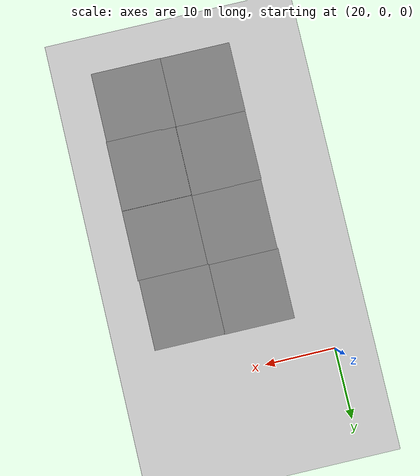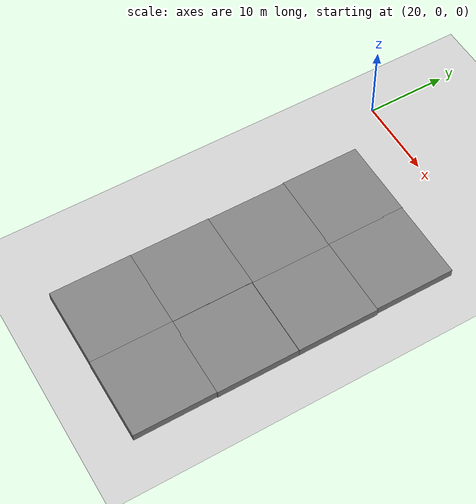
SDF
<sdf version="1.7">
 <world name="default">
  <model name="ground_plane">
   <static>1</static>
   <link name="link">
    <collision name="collision">
     <geometry><plane><normal>0 0 1</normal><size>100 100</size></plane></geometry>
     <surface>
      <contact><collide_bitmask>65535</collide_bitmask></contact>
      <friction><ode><mu>100</mu><mu2>50</mu2></ode></friction>
     </surface>
    </collision>
    <visual name="visual">
     <cast_shadows>0</cast_shadows>
     <geometry><plane><normal>0 0 1</normal><size>100 100</size></plane></geometry>
     <material>
      <script><uri>file://media/materials/scripts/gazebo.material</uri><name>Gazebo/Grey</name></script>
     </material>
    </visual>
   </link>
  </model>
  <model name="farm_clone_0_clone_1_clone_1_clone_32">
   <link name="link">
    <inertial>
     <mass>1</mass>
     <inertia><ixx>1</ixx><ixy>0</ixy><ixz>0</ixz><iyy>1</iyy><iyz>0</iyz><izz>1</izz></inertia>
    </inertial>
    <visual name="visual_1">
     <pose>2 2.5 0 0 -0 0</pose>
     <cast_shadows>0</cast_shadows>
     <geometry><box><size>10 10 2</size></box></geometry>
     <material>
      <script>
       <uri>model://mud_box/materials/scripts</uri>
       <uri>model://mud_box/materials/textures</uri>
       <name>vrc/mud</name>
      </script>
      <shader type="pixel"><normal_map>__default__</normal_map></shader>
      <ambient>0.5 0.5 0.5 1</ambient>
      <diffuse>0.5 0.5 0.5 1</diffuse>
      <specular>0.2 0.2 0.2 1</specular>
      <emissive>0 0 0 1</emissive>
     </material>
    </visual>
    <visual name="visual_2">
     <pose>2 2.5 0 0 -0 0</pose>
     <cast_shadows>0</cast_shadows>
     <geometry><box><size>10 10 2</size></box></geometry>
     <material>
      <script>
       <uri>model://mud_box/materials/scripts</uri>
       <uri>model://mud_box/materials/textures</uri>
       <name>vrc/mud</name>
      </script>
      <shader type="pixel"><normal_map>__default__</normal_map></shader>
      <ambient>0.5 0.5 0.5 1</ambient>
      <diffuse>0.5 0.5 0.5 1</diffuse>
      <specular>0.2 0.2 0.2 1</specular>
      <emissive>0 0 0 1</emissive>
     </material>
    </visual>
    <visual name="visual_4">
     <pose>2 2.5 0 0 -0 0</pose>
     <cast_shadows>0</cast_shadows>
     <geometry><box><size>10 10 2</size></box></geometry>
     <material>
      <script>
       <uri>model://mud_box/materials/scripts</uri>
       <uri>model://mud_box/materials/textures</uri>
       <name>vrc/mud</name>
      </script>
      <shader type="pixel"><normal_map>__default__</normal_map></shader>
      <ambient>0.5 0.5 0.5 1</ambient>
      <diffuse>0.5 0.5 0.5 1</diffuse>
      <specular>0.2 0.2 0.2 1</specular>
      <emissive>0 0 0 1</emissive>
     </material>
    </visual>
    <visual name="visual_3">
     <pose>2 2.5 0 0 -0 0</pose>
     <cast_shadows>0</cast_shadows>
     <geometry><box><size>10 10 2</size></box></geometry>
     <material>
      <script>
       <uri>model://mud_box/materials/scripts</uri>
       <uri>model://mud_box/materials/textures</uri>
       <name>vrc/mud</name>
      </script>
      <shader type="pixel"><normal_map>__default__</normal_map></shader>
      <ambient>0.5 0.5 0.5 1</ambient>
      <diffuse>0.5 0.5 0.5 1</diffuse>
      <specular>0.2 0.2 0.2 1</specular>
      <emissive>0 0 0 1</emissive>
     </material>
    </visual>
    <collision name="collision">
     <laser_retro>0.3</laser_retro>
     <pose>2 2.5 0 0 -0 0</pose>
     <geometry><box><size>100 100 2</size></box></geometry>
     <surface>
      <friction>
       <ode><mu>1.2</mu><mu2>1.2</mu2><fdir1>0 0 0</fdir1><slip1>0.01</slip1><slip2>0.01</slip2></ode>
       <torsional>
        <coefficient>0.05</coefficient>
        <patch_radius>0.08</patch_radius>
        <surface_radius>0.05</surface_radius>
        <use_patch_radius>1</use_patch_radius>
        <ode><slip>0</slip></ode>
       </torsional>
      </friction>
      <bounce><restitution_coefficient>0</restitution_coefficient><threshold>1</threshold></bounce>
      <contact>
       <collide_without_contact>0</collide_without_contact>
       <collide_without_contact_bitmask>1</collide_without_contact_bitmask>
       <collide_bitmask>1</collide_bitmask>
       <ode>
        <soft_cfm>0</soft_cfm>
        <soft_erp>1</soft_erp>
        <kp>1e+07</kp>
        <kd>5000</kd>
        <max_vel>0.001</max_vel>
        <min_depth>0.0005</min_depth>
       </ode>
       <bullet>
        <split_impulse>1</split_impulse>
        <split_impulse_penetration_threshold>-0.01</split_impulse_penetration_threshold>
        <soft_cfm>0</soft_cfm>
        <soft_erp>1</soft_erp>
        <kp>1e+07</kp>
        <kd>5000</kd>
       </bullet>
      </contact>
     </surface>
    </collision>
   </link>
   <static>1</static>
   <pose>27.5942 -42.8336 0 0 -0 0</pose>
  </model>
  <model name="farm_clone_0_clone_1_clone_1_clone_33">
   <link name="link">
    <inertial>
     <mass>1</mass>
     <inertia><ixx>1</ixx><ixy>0</ixy><ixz>0</ixz><iyy>1</iyy><iyz>0</iyz><izz>1</izz></inertia>
    </inertial>
    <visual name="visual_1">
     <pose>2 2.5 0 0 -0 0</pose>
     <cast_shadows>0</cast_shadows>
     <geometry><box><size>10 10 2</size></box></geometry>
     <material>
      <script>
       <uri>model://mud_box/materials/scripts</uri>
       <uri>model://mud_box/materials/textures</uri>
       <name>vrc/mud</name>
      </script>
      <shader type="pixel"><normal_map>__default__</normal_map></shader>
      <ambient>0.5 0.5 0.5 1</ambient>
      <diffuse>0.5 0.5 0.5 1</diffuse>
      <specular>0.2 0.2 0.2 1</specular>
      <emissive>0 0 0 1</emissive>
     </material>
    </visual>
    <visual name="visual_2">
     <pose>2 2.5 0 0 -0 0</pose>
     <cast_shadows>0</cast_shadows>
     <geometry><box><size>10 10 2</size></box></geometry>
     <material>
      <script>
       <uri>model://mud_box/materials/scripts</uri>
       <uri>model://mud_box/materials/textures</uri>
       <name>vrc/mud</name>
      </script>
      <shader type="pixel"><normal_map>__default__</normal_map></shader>
      <ambient>0.5 0.5 0.5 1</ambient>
      <diffuse>0.5 0.5 0.5 1</diffuse>
      <specular>0.2 0.2 0.2 1</specular>
      <emissive>0 0 0 1</emissive>
     </material>
    </visual>
    <visual name="visual_4">
     <pose>2 2.5 0 0 -0 0</pose>
     <cast_shadows>0</cast_shadows>
     <geometry><box><size>10 10 2</size></box></geometry>
     <material>
      <script>
       <uri>model://mud_box/materials/scripts</uri>
       <uri>model://mud_box/materials/textures</uri>
       <name>vrc/mud</name>
      </script>
      <shader type="pixel"><normal_map>__default__</normal_map></shader>
      <ambient>0.5 0.5 0.5 1</ambient>
      <diffuse>0.5 0.5 0.5 1</diffuse>
      <specular>0.2 0.2 0.2 1</specular>
      <emissive>0 0 0 1</emissive>
     </material>
    </visual>
    <visual name="visual_3">
     <pose>2 2.5 0 0 -0 0</pose>
     <cast_shadows>0</cast_shadows>
     <geometry><box><size>10 10 2</size></box></geometry>
     <material>
      <script>
       <uri>model://mud_box/materials/scripts</uri>
       <uri>model://mud_box/materials/textures</uri>
       <name>vrc/mud</name>
      </script>
      <shader type="pixel"><normal_map>__default__</normal_map></shader>
      <ambient>0.5 0.5 0.5 1</ambient>
      <diffuse>0.5 0.5 0.5 1</diffuse>
      <specular>0.2 0.2 0.2 1</specular>
      <emissive>0 0 0 1</emissive>
     </material>
    </visual>
    <collision name="collision">
     <laser_retro>0.3</laser_retro>
     <pose>2 2.5 0 0 -0 0</pose>
     <geometry><box><size>100 100 2</size></box></geometry>
     <surface>
      <friction>
       <ode><mu>1.2</mu><mu2>1.2</mu2><fdir1>0 0 0</fdir1><slip1>0.01</slip1><slip2>0.01</slip2></ode>
       <torsional>
        <coefficient>0.05</coefficient>
        <patch_radius>0.08</patch_radius>
        <surface_radius>0.05</surface_radius>
        <use_patch_radius>1</use_patch_radius>
        <ode><slip>0</slip></ode>
       </torsional>
      </friction>
      <bounce><restitution_coefficient>0</restitution_coefficient><threshold>1</threshold></bounce>
      <contact>
       <collide_without_contact>0</collide_without_contact>
       <collide_without_contact_bitmask>1</collide_without_contact_bitmask>
       <collide_bitmask>1</collide_bitmask>
       <ode>
        <soft_cfm>0</soft_cfm>
        <soft_erp>1</soft_erp>
        <kp>1e+07</kp>
        <kd>5000</kd>
        <max_vel>0.001</max_vel>
        <min_depth>0.0005</min_depth>
       </ode>
       <bullet>
        <split_impulse>1</split_impulse>
        <split_impulse_penetration_threshold>-0.01</split_impulse_penetration_threshold>
        <soft_cfm>0</soft_cfm>
        <soft_erp>1</soft_erp>
        <kp>1e+07</kp>
        <kd>5000</kd>
       </bullet>
      </contact>
     </surface>
    </collision>
   </link>
   <static>1</static>
   <pose>37.5904 -42.8676 0 0 -0 0</pose>
  </model>
  <model name="farm_clone_0_clone_1_clone_1_clone_34">
   <link name="link">
    <inertial>
     <mass>1</mass>
     <inertia><ixx>1</ixx><ixy>0</ixy><ixz>0</ixz><iyy>1</iyy><iyz>0</iyz><izz>1</izz></inertia>
    </inertial>
    <visual name="visual_1">
     <pose>2 2.5 0 0 -0 0</pose>
     <cast_shadows>0</cast_shadows>
     <geometry><box><size>10 10 2</size></box></geometry>
     <material>
      <script>
       <uri>model://mud_box/materials/scripts</uri>
       <uri>model://mud_box/materials/textures</uri>
       <name>vrc/mud</name>
      </script>
      <shader type="pixel"><normal_map>__default__</normal_map></shader>
      <ambient>0.5 0.5 0.5 1</ambient>
      <diffuse>0.5 0.5 0.5 1</diffuse>
      <specular>0.2 0.2 0.2 1</specular>
      <emissive>0 0 0 1</emissive>
     </material>
    </visual>
    <visual name="visual_2">
     <pose>2 2.5 0 0 -0 0</pose>
     <cast_shadows>0</cast_shadows>
     <geometry><box><size>10 10 2</size></box></geometry>
     <material>
      <script>
       <uri>model://mud_box/materials/scripts</uri>
       <uri>model://mud_box/materials/textures</uri>
       <name>vrc/mud</name>
      </script>
      <shader type="pixel"><normal_map>__default__</normal_map></shader>
      <ambient>0.5 0.5 0.5 1</ambient>
      <diffuse>0.5 0.5 0.5 1</diffuse>
      <specular>0.2 0.2 0.2 1</specular>
      <emissive>0 0 0 1</emissive>
     </material>
    </visual>
    <visual name="visual_4">
     <pose>2 2.5 0 0 -0 0</pose>
     <cast_shadows>0</cast_shadows>
     <geometry><box><size>10 10 2</size></box></geometry>
     <material>
      <script>
       <uri>model://mud_box/materials/scripts</uri>
       <uri>model://mud_box/materials/textures</uri>
       <name>vrc/mud</name>
      </script>
      <shader type="pixel"><normal_map>__default__</normal_map></shader>
      <ambient>0.5 0.5 0.5 1</ambient>
      <diffuse>0.5 0.5 0.5 1</diffuse>
      <specular>0.2 0.2 0.2 1</specular>
      <emissive>0 0 0 1</emissive>
     </material>
    </visual>
    <visual name="visual_3">
     <pose>2 2.5 0 0 -0 0</pose>
     <cast_shadows>0</cast_shadows>
     <geometry><box><size>10 10 2</size></box></geometry>
     <material>
      <script>
       <uri>model://mud_box/materials/scripts</uri>
       <uri>model://mud_box/materials/textures</uri>
       <name>vrc/mud</name>
      </script>
      <shader type="pixel"><normal_map>__default__</normal_map></shader>
      <ambient>0.5 0.5 0.5 1</ambient>
      <diffuse>0.5 0.5 0.5 1</diffuse>
      <specular>0.2 0.2 0.2 1</specular>
      <emissive>0 0 0 1</emissive>
     </material>
    </visual>
    <collision name="collision">
     <laser_retro>0.3</laser_retro>
     <pose>2 2.5 0 0 -0 0</pose>
     <geometry><box><size>100 100 2</size></box></geometry>
     <surface>
      <friction>
       <ode><mu>1.2</mu><mu2>1.2</mu2><fdir1>0 0 0</fdir1><slip1>0.01</slip1><slip2>0.01</slip2></ode>
       <torsional>
        <coefficient>0.05</coefficient>
        <patch_radius>0.08</patch_radius>
        <surface_radius>0.05</surface_radius>
        <use_patch_radius>1</use_patch_radius>
        <ode><slip>0</slip></ode>
       </torsional>
      </friction>
      <bounce><restitution_coefficient>0</restitution_coefficient><threshold>1</threshold></bounce>
      <contact>
       <collide_without_contact>0</collide_without_contact>
       <collide_without_contact_bitmask>1</collide_without_contact_bitmask>
       <collide_bitmask>1</collide_bitmask>
       <ode>
        <soft_cfm>0</soft_cfm>
        <soft_erp>1</soft_erp>
        <kp>1e+07</kp>
        <kd>5000</kd>
        <max_vel>0.001</max_vel>
        <min_depth>0.0005</min_depth>
       </ode>
       <bullet>
        <split_impulse>1</split_impulse>
        <split_impulse_penetration_threshold>-0.01</split_impulse_penetration_threshold>
        <soft_cfm>0</soft_cfm>
        <soft_erp>1</soft_erp>
        <kp>1e+07</kp>
        <kd>5000</kd>
       </bullet>
      </contact>
     </surface>
    </collision>
   </link>
   <static>1</static>
   <pose>27.6282 -32.8714 0 0 -0 0</pose>
  </model>
  <model name="farm_clone_0_clone_1_clone_1_clone_35">
   <link name="link">
    <inertial>
     <mass>1</mass>
     <inertia><ixx>1</ixx><ixy>0</ixy><ixz>0</ixz><iyy>1</iyy><iyz>0</iyz><izz>1</izz></inertia>
    </inertial>
    <visual name="visual_1">
     <pose>2 2.5 0 0 -0 0</pose>
     <cast_shadows>0</cast_shadows>
     <geometry><box><size>10 10 2</size></box></geometry>
     <material>
      <script>
       <uri>model://mud_box/materials/scripts</uri>
       <uri>model://mud_box/materials/textures</uri>
       <name>vrc/mud</name>
      </script>
      <shader type="pixel"><normal_map>__default__</normal_map></shader>
      <ambient>0.5 0.5 0.5 1</ambient>
      <diffuse>0.5 0.5 0.5 1</diffuse>
      <specular>0.2 0.2 0.2 1</specular>
      <emissive>0 0 0 1</emissive>
     </material>
    </visual>
    <visual name="visual_2">
     <pose>2 2.5 0 0 -0 0</pose>
     <cast_shadows>0</cast_shadows>
     <geometry><box><size>10 10 2</size></box></geometry>
     <material>
      <script>
       <uri>model://mud_box/materials/scripts</uri>
       <uri>model://mud_box/materials/textures</uri>
       <name>vrc/mud</name>
      </script>
      <shader type="pixel"><normal_map>__default__</normal_map></shader>
      <ambient>0.5 0.5 0.5 1</ambient>
      <diffuse>0.5 0.5 0.5 1</diffuse>
      <specular>0.2 0.2 0.2 1</specular>
      <emissive>0 0 0 1</emissive>
     </material>
    </visual>
    <visual name="visual_4">
     <pose>2 2.5 0 0 -0 0</pose>
     <cast_shadows>0</cast_shadows>
     <geometry><box><size>10 10 2</size></box></geometry>
     <material>
      <script>
       <uri>model://mud_box/materials/scripts</uri>
       <uri>model://mud_box/materials/textures</uri>
       <name>vrc/mud</name>
      </script>
      <shader type="pixel"><normal_map>__default__</normal_map></shader>
      <ambient>0.5 0.5 0.5 1</ambient>
      <diffuse>0.5 0.5 0.5 1</diffuse>
      <specular>0.2 0.2 0.2 1</specular>
      <emissive>0 0 0 1</emissive>
     </material>
    </visual>
    <visual name="visual_3">
     <pose>2 2.5 0 0 -0 0</pose>
     <cast_shadows>0</cast_shadows>
     <geometry><box><size>10 10 2</size></box></geometry>
     <material>
      <script>
       <uri>model://mud_box/materials/scripts</uri>
       <uri>model://mud_box/materials/textures</uri>
       <name>vrc/mud</name>
      </script>
      <shader type="pixel"><normal_map>__default__</normal_map></shader>
      <ambient>0.5 0.5 0.5 1</ambient>
      <diffuse>0.5 0.5 0.5 1</diffuse>
      <specular>0.2 0.2 0.2 1</specular>
      <emissive>0 0 0 1</emissive>
     </material>
    </visual>
    <collision name="collision">
     <laser_retro>0.3</laser_retro>
     <pose>2 2.5 0 0 -0 0</pose>
     <geometry><box><size>100 100 2</size></box></geometry>
     <surface>
      <friction>
       <ode><mu>1.2</mu><mu2>1.2</mu2><fdir1>0 0 0</fdir1><slip1>0.01</slip1><slip2>0.01</slip2></ode>
       <torsional>
        <coefficient>0.05</coefficient>
        <patch_radius>0.08</patch_radius>
        <surface_radius>0.05</surface_radius>
        <use_patch_radius>1</use_patch_radius>
        <ode><slip>0</slip></ode>
       </torsional>
      </friction>
      <bounce><restitution_coefficient>0</restitution_coefficient><threshold>1</threshold></bounce>
      <contact>
       <collide_without_contact>0</collide_without_contact>
       <collide_without_contact_bitmask>1</collide_without_contact_bitmask>
       <collide_bitmask>1</collide_bitmask>
       <ode>
        <soft_cfm>0</soft_cfm>
        <soft_erp>1</soft_erp>
        <kp>1e+07</kp>
        <kd>5000</kd>
        <max_vel>0.001</max_vel>
        <min_depth>0.0005</min_depth>
       </ode>
       <bullet>
        <split_impulse>1</split_impulse>
        <split_impulse_penetration_threshold>-0.01</split_impulse_penetration_threshold>
        <soft_cfm>0</soft_cfm>
        <soft_erp>1</soft_erp>
        <kp>1e+07</kp>
        <kd>5000</kd>
       </bullet>
      </contact>
     </surface>
    </collision>
   </link>
   <static>1</static>
   <pose>37.6584 -32.9734 0 0 -0 0</pose>
  </model>
  <model name="farm_clone_0_clone_1_clone_1_clone_36">
   <link name="link">
    <inertial>
     <mass>1</mass>
     <inertia><ixx>1</ixx><ixy>0</ixy><ixz>0</ixz><iyy>1</iyy><iyz>0</iyz><izz>1</izz></inertia>
    </inertial>
    <visual name="visual_1">
     <pose>2 2.5 0 0 -0 0</pose>
     <cast_shadows>0</cast_shadows>
     <geometry><box><size>10 10 2</size></box></geometry>
     <material>
      <script>
       <uri>model://mud_box/materials/scripts</uri>
       <uri>model://mud_box/materials/textures</uri>
       <name>vrc/mud</name>
      </script>
      <shader type="pixel"><normal_map>__default__</normal_map></shader>
      <ambient>0.5 0.5 0.5 1</ambient>
      <diffuse>0.5 0.5 0.5 1</diffuse>
      <specular>0.2 0.2 0.2 1</specular>
      <emissive>0 0 0 1</emissive>
     </material>
    </visual>
    <visual name="visual_2">
     <pose>2 2.5 0 0 -0 0</pose>
     <cast_shadows>0</cast_shadows>
     <geometry><box><size>10 10 2</size></box></geometry>
     <material>
      <script>
       <uri>model://mud_box/materials/scripts</uri>
       <uri>model://mud_box/materials/textures</uri>
       <name>vrc/mud</name>
      </script>
      <shader type="pixel"><normal_map>__default__</normal_map></shader>
      <ambient>0.5 0.5 0.5 1</ambient>
      <diffuse>0.5 0.5 0.5 1</diffuse>
      <specular>0.2 0.2 0.2 1</specular>
      <emissive>0 0 0 1</emissive>
     </material>
    </visual>
    <visual name="visual_4">
     <pose>2 2.5 0 0 -0 0</pose>
     <cast_shadows>0</cast_shadows>
     <geometry><box><size>10 10 2</size></box></geometry>
     <material>
      <script>
       <uri>model://mud_box/materials/scripts</uri>
       <uri>model://mud_box/materials/textures</uri>
       <name>vrc/mud</name>
      </script>
      <shader type="pixel"><normal_map>__default__</normal_map></shader>
      <ambient>0.5 0.5 0.5 1</ambient>
      <diffuse>0.5 0.5 0.5 1</diffuse>
      <specular>0.2 0.2 0.2 1</specular>
      <emissive>0 0 0 1</emissive>
     </material>
    </visual>
    <visual name="visual_3">
     <pose>2 2.5 0 0 -0 0</pose>
     <cast_shadows>0</cast_shadows>
     <geometry><box><size>10 10 2</size></box></geometry>
     <material>
      <script>
       <uri>model://mud_box/materials/scripts</uri>
       <uri>model://mud_box/materials/textures</uri>
       <name>vrc/mud</name>
      </script>
      <shader type="pixel"><normal_map>__default__</normal_map></shader>
      <ambient>0.5 0.5 0.5 1</ambient>
      <diffuse>0.5 0.5 0.5 1</diffuse>
      <specular>0.2 0.2 0.2 1</specular>
      <emissive>0 0 0 1</emissive>
     </material>
    </visual>
    <collision name="collision">
     <laser_retro>0.3</laser_retro>
     <pose>2 2.5 0 0 -0 0</pose>
     <geometry><box><size>100 100 2</size></box></geometry>
     <surface>
      <friction>
       <ode><mu>1.2</mu><mu2>1.2</mu2><fdir1>0 0 0</fdir1><slip1>0.01</slip1><slip2>0.01</slip2></ode>
       <torsional>
        <coefficient>0.05</coefficient>
        <patch_radius>0.08</patch_radius>
        <surface_radius>0.05</surface_radius>
        <use_patch_radius>1</use_patch_radius>
        <ode><slip>0</slip></ode>
       </torsional>
      </friction>
      <bounce><restitution_coefficient>0</restitution_coefficient><threshold>1</threshold></bounce>
      <contact>
       <collide_without_contact>0</collide_without_contact>
       <collide_without_contact_bitmask>1</collide_without_contact_bitmask>
       <collide_bitmask>1</collide_bitmask>
       <ode>
        <soft_cfm>0</soft_cfm>
        <soft_erp>1</soft_erp>
        <kp>1e+07</kp>
        <kd>5000</kd>
        <max_vel>0.001</max_vel>
        <min_depth>0.0005</min_depth>
       </ode>
       <bullet>
        <split_impulse>1</split_impulse>
        <split_impulse_penetration_threshold>-0.01</split_impulse_penetration_threshold>
        <soft_cfm>0</soft_cfm>
        <soft_erp>1</soft_erp>
        <kp>1e+07</kp>
        <kd>5000</kd>
       </bullet>
      </contact>
     </surface>
    </collision>
   </link>
   <static>1</static>
   <pose>27.6962 -22.9093 0 0 -0 0</pose>
  </model>
  <model name="farm_clone_0_clone_1_clone_1_clone_37">
   <link name="link">
    <inertial>
     <mass>1</mass>
     <inertia><ixx>1</ixx><ixy>0</ixy><ixz>0</ixz><iyy>1</iyy><iyz>0</iyz><izz>1</izz></inertia>
    </inertial>
    <visual name="visual_1">
     <pose>2 2.5 0 0 -0 0</pose>
     <cast_shadows>0</cast_shadows>
     <geometry><box><size>10 10 2</size></box></geometry>
     <material>
      <script>
       <uri>model://mud_box/materials/scripts</uri>
       <uri>model://mud_box/materials/textures</uri>
       <name>vrc/mud</name>
      </script>
      <shader type="pixel"><normal_map>__default__</normal_map></shader>
      <ambient>0.5 0.5 0.5 1</ambient>
      <diffuse>0.5 0.5 0.5 1</diffuse>
      <specular>0.2 0.2 0.2 1</specular>
      <emissive>0 0 0 1</emissive>
     </material>
    </visual>
    <visual name="visual_2">
     <pose>2 2.5 0 0 -0 0</pose>
     <cast_shadows>0</cast_shadows>
     <geometry><box><size>10 10 2</size></box></geometry>
     <material>
      <script>
       <uri>model://mud_box/materials/scripts</uri>
       <uri>model://mud_box/materials/textures</uri>
       <name>vrc/mud</name>
      </script>
      <shader type="pixel"><normal_map>__default__</normal_map></shader>
      <ambient>0.5 0.5 0.5 1</ambient>
      <diffuse>0.5 0.5 0.5 1</diffuse>
      <specular>0.2 0.2 0.2 1</specular>
      <emissive>0 0 0 1</emissive>
     </material>
    </visual>
    <visual name="visual_4">
     <pose>2 2.5 0 0 -0 0</pose>
     <cast_shadows>0</cast_shadows>
     <geometry><box><size>10 10 2</size></box></geometry>
     <material>
      <script>
       <uri>model://mud_box/materials/scripts</uri>
       <uri>model://mud_box/materials/textures</uri>
       <name>vrc/mud</name>
      </script>
      <shader type="pixel"><normal_map>__default__</normal_map></shader>
      <ambient>0.5 0.5 0.5 1</ambient>
      <diffuse>0.5 0.5 0.5 1</diffuse>
      <specular>0.2 0.2 0.2 1</specular>
      <emissive>0 0 0 1</emissive>
     </material>
    </visual>
    <visual name="visual_3">
     <pose>2 2.5 0 0 -0 0</pose>
     <cast_shadows>0</cast_shadows>
     <geometry><box><size>10 10 2</size></box></geometry>
     <material>
      <script>
       <uri>model://mud_box/materials/scripts</uri>
       <uri>model://mud_box/materials/textures</uri>
       <name>vrc/mud</name>
      </script>
      <shader type="pixel"><normal_map>__default__</normal_map></shader>
      <ambient>0.5 0.5 0.5 1</ambient>
      <diffuse>0.5 0.5 0.5 1</diffuse>
      <specular>0.2 0.2 0.2 1</specular>
      <emissive>0 0 0 1</emissive>
     </material>
    </visual>
    <collision name="collision">
     <laser_retro>0.3</laser_retro>
     <pose>2 2.5 0 0 -0 0</pose>
     <geometry><box><size>100 100 2</size></box></geometry>
     <surface>
      <friction>
       <ode><mu>1.2</mu><mu2>1.2</mu2><fdir1>0 0 0</fdir1><slip1>0.01</slip1><slip2>0.01</slip2></ode>
       <torsional>
        <coefficient>0.05</coefficient>
        <patch_radius>0.08</patch_radius>
        <surface_radius>0.05</surface_radius>
        <use_patch_radius>1</use_patch_radius>
        <ode><slip>0</slip></ode>
       </torsional>
      </friction>
      <bounce><restitution_coefficient>0</restitution_coefficient><threshold>1</threshold></bounce>
      <contact>
       <collide_without_contact>0</collide_without_contact>
       <collide_without_contact_bitmask>1</collide_without_contact_bitmask>
       <collide_bitmask>1</collide_bitmask>
       <ode>
        <soft_cfm>0</soft_cfm>
        <soft_erp>1</soft_erp>
        <kp>1e+07</kp>
        <kd>5000</kd>
        <max_vel>0.001</max_vel>
        <min_depth>0.0005</min_depth>
       </ode>
       <bullet>
        <split_impulse>1</split_impulse>
        <split_impulse_penetration_threshold>-0.01</split_impulse_penetration_threshold>
        <soft_cfm>0</soft_cfm>
        <soft_erp>1</soft_erp>
        <kp>1e+07</kp>
        <kd>5000</kd>
       </bullet>
      </contact>
     </surface>
    </collision>
   </link>
   <static>1</static>
   <pose>37.6584 -22.9433 0 0 -0 0</pose>
  </model>
  <model name="farm_clone_0_clone_1_clone_1_clone_38">
   <link name="link">
    <inertial>
     <mass>1</mass>
     <inertia><ixx>1</ixx><ixy>0</ixy><ixz>0</ixz><iyy>1</iyy><iyz>0</iyz><izz>1</izz></inertia>
    </inertial>
    <visual name="visual_1">
     <pose>2 2.5 0 0 -0 0</pose>
     <cast_shadows>0</cast_shadows>
     <geometry><box><size>10 10 2</size></box></geometry>
     <material>
      <script>
       <uri>model://mud_box/materials/scripts</uri>
       <uri>model://mud_box/materials/textures</uri>
       <name>vrc/mud</name>
      </script>
      <shader type="pixel"><normal_map>__default__</normal_map></shader>
      <ambient>0.5 0.5 0.5 1</ambient>
      <diffuse>0.5 0.5 0.5 1</diffuse>
      <specular>0.2 0.2 0.2 1</specular>
      <emissive>0 0 0 1</emissive>
     </material>
    </visual>
    <visual name="visual_2">
     <pose>2 2.5 0 0 -0 0</pose>
     <cast_shadows>0</cast_shadows>
     <geometry><box><size>10 10 2</size></box></geometry>
     <material>
      <script>
       <uri>model://mud_box/materials/scripts</uri>
       <uri>model://mud_box/materials/textures</uri>
       <name>vrc/mud</name>
      </script>
      <shader type="pixel"><normal_map>__default__</normal_map></shader>
      <ambient>0.5 0.5 0.5 1</ambient>
      <diffuse>0.5 0.5 0.5 1</diffuse>
      <specular>0.2 0.2 0.2 1</specular>
      <emissive>0 0 0 1</emissive>
     </material>
    </visual>
    <visual name="visual_4">
     <pose>2 2.5 0 0 -0 0</pose>
     <cast_shadows>0</cast_shadows>
     <geometry><box><size>10 10 2</size></box></geometry>
     <material>
      <script>
       <uri>model://mud_box/materials/scripts</uri>
       <uri>model://mud_box/materials/textures</uri>
       <name>vrc/mud</name>
      </script>
      <shader type="pixel"><normal_map>__default__</normal_map></shader>
      <ambient>0.5 0.5 0.5 1</ambient>
      <diffuse>0.5 0.5 0.5 1</diffuse>
      <specular>0.2 0.2 0.2 1</specular>
      <emissive>0 0 0 1</emissive>
     </material>
    </visual>
    <visual name="visual_3">
     <pose>2 2.5 0 0 -0 0</pose>
     <cast_shadows>0</cast_shadows>
     <geometry><box><size>10 10 2</size></box></geometry>
     <material>
      <script>
       <uri>model://mud_box/materials/scripts</uri>
       <uri>model://mud_box/materials/textures</uri>
       <name>vrc/mud</name>
      </script>
      <shader type="pixel"><normal_map>__default__</normal_map></shader>
      <ambient>0.5 0.5 0.5 1</ambient>
      <diffuse>0.5 0.5 0.5 1</diffuse>
      <specular>0.2 0.2 0.2 1</specular>
      <emissive>0 0 0 1</emissive>
     </material>
    </visual>
    <collision name="collision">
     <laser_retro>0.3</laser_retro>
     <pose>2 2.5 0 0 -0 0</pose>
     <geometry><box><size>100 100 2</size></box></geometry>
     <surface>
      <friction>
       <ode><mu>1.2</mu><mu2>1.2</mu2><fdir1>0 0 0</fdir1><slip1>0.01</slip1><slip2>0.01</slip2></ode>
       <torsional>
        <coefficient>0.05</coefficient>
        <patch_radius>0.08</patch_radius>
        <surface_radius>0.05</surface_radius>
        <use_patch_radius>1</use_patch_radius>
        <ode><slip>0</slip></ode>
       </torsional>
      </friction>
      <bounce><restitution_coefficient>0</restitution_coefficient><threshold>1</threshold></bounce>
      <contact>
       <collide_without_contact>0</collide_without_contact>
       <collide_without_contact_bitmask>1</collide_without_contact_bitmask>
       <collide_bitmask>1</collide_bitmask>
       <ode>
        <soft_cfm>0</soft_cfm>
        <soft_erp>1</soft_erp>
        <kp>1e+07</kp>
        <kd>5000</kd>
        <max_vel>0.001</max_vel>
        <min_depth>0.0005</min_depth>
       </ode>
       <bullet>
        <split_impulse>1</split_impulse>
        <split_impulse_penetration_threshold>-0.01</split_impulse_penetration_threshold>
        <soft_cfm>0</soft_cfm>
        <soft_erp>1</soft_erp>
        <kp>1e+07</kp>
        <kd>5000</kd>
       </bullet>
      </contact>
     </surface>
    </collision>
   </link>
   <static>1</static>
   <pose>27.5942 -12.9812 0 0 -0 0</pose>
  </model>
  <model name="farm_clone_0_clone_1_clone_1_clone_39">
   <link name="link">
    <inertial>
     <mass>1</mass>
     <inertia><ixx>1</ixx><ixy>0</ixy><ixz>0</ixz><iyy>1</iyy><iyz>0</iyz><izz>1</izz></inertia>
    </inertial>
    <visual name="visual_1">
     <pose>2 2.5 0 0 -0 0</pose>
     <cast_shadows>0</cast_shadows>
     <geometry><box><size>10 10 2</size></box></geometry>
     <material>
      <script>
       <uri>model://mud_box/materials/scripts</uri>
       <uri>model://mud_box/materials/textures</uri>
       <name>vrc/mud</name>
      </script>
      <shader type="pixel"><normal_map>__default__</normal_map></shader>
      <ambient>0.5 0.5 0.5 1</ambient>
      <diffuse>0.5 0.5 0.5 1</diffuse>
      <specular>0.2 0.2 0.2 1</specular>
      <emissive>0 0 0 1</emissive>
     </material>
    </visual>
    <visual name="visual_2">
     <pose>2 2.5 0 0 -0 0</pose>
     <cast_shadows>0</cast_shadows>
     <geometry><box><size>10 10 2</size></box></geometry>
     <material>
      <script>
       <uri>model://mud_box/materials/scripts</uri>
       <uri>model://mud_box/materials/textures</uri>
       <name>vrc/mud</name>
      </script>
      <shader type="pixel"><normal_map>__default__</normal_map></shader>
      <ambient>0.5 0.5 0.5 1</ambient>
      <diffuse>0.5 0.5 0.5 1</diffuse>
      <specular>0.2 0.2 0.2 1</specular>
      <emissive>0 0 0 1</emissive>
     </material>
    </visual>
    <visual name="visual_4">
     <pose>2 2.5 0 0 -0 0</pose>
     <cast_shadows>0</cast_shadows>
     <geometry><box><size>10 10 2</size></box></geometry>
     <material>
      <script>
       <uri>model://mud_box/materials/scripts</uri>
       <uri>model://mud_box/materials/textures</uri>
       <name>vrc/mud</name>
      </script>
      <shader type="pixel"><normal_map>__default__</normal_map></shader>
      <ambient>0.5 0.5 0.5 1</ambient>
      <diffuse>0.5 0.5 0.5 1</diffuse>
      <specular>0.2 0.2 0.2 1</specular>
      <emissive>0 0 0 1</emissive>
     </material>
    </visual>
    <visual name="visual_3">
     <pose>2 2.5 0 0 -0 0</pose>
     <cast_shadows>0</cast_shadows>
     <geometry><box><size>10 10 2</size></box></geometry>
     <material>
      <script>
       <uri>model://mud_box/materials/scripts</uri>
       <uri>model://mud_box/materials/textures</uri>
       <name>vrc/mud</name>
      </script>
      <shader type="pixel"><normal_map>__default__</normal_map></shader>
      <ambient>0.5 0.5 0.5 1</ambient>
      <diffuse>0.5 0.5 0.5 1</diffuse>
      <specular>0.2 0.2 0.2 1</specular>
      <emissive>0 0 0 1</emissive>
     </material>
    </visual>
    <collision name="collision">
     <laser_retro>0.3</laser_retro>
     <pose>2 2.5 0 0 -0 0</pose>
     <geometry><box><size>100 100 2</size></box></geometry>
     <surface>
      <friction>
       <ode><mu>1.2</mu><mu2>1.2</mu2><fdir1>0 0 0</fdir1><slip1>0.01</slip1><slip2>0.01</slip2></ode>
       <torsional>
        <coefficient>0.05</coefficient>
        <patch_radius>0.08</patch_radius>
        <surface_radius>0.05</surface_radius>
        <use_patch_radius>1</use_patch_radius>
        <ode><slip>0</slip></ode>
       </torsional>
      </friction>
      <bounce><restitution_coefficient>0</restitution_coefficient><threshold>1</threshold></bounce>
      <contact>
       <collide_without_contact>0</collide_without_contact>
       <collide_without_contact_bitmask>1</collide_without_contact_bitmask>
       <collide_bitmask>1</collide_bitmask>
       <ode>
        <soft_cfm>0</soft_cfm>
        <soft_erp>1</soft_erp>
        <kp>1e+07</kp>
        <kd>5000</kd>
        <max_vel>0.001</max_vel>
        <min_depth>0.0005</min_depth>
       </ode>
       <bullet>
        <split_impulse>1</split_impulse>
        <split_impulse_penetration_threshold>-0.01</split_impulse_penetration_threshold>
        <soft_cfm>0</soft_cfm>
        <soft_erp>1</soft_erp>
        <kp>1e+07</kp>
        <kd>5000</kd>
       </bullet>
      </contact>
     </surface>
    </collision>
   </link>
   <static>1</static>
   <pose>37.5224 -13.0152 0 0 -0 0</pose>
  </model>
 </world>
</sdf>
